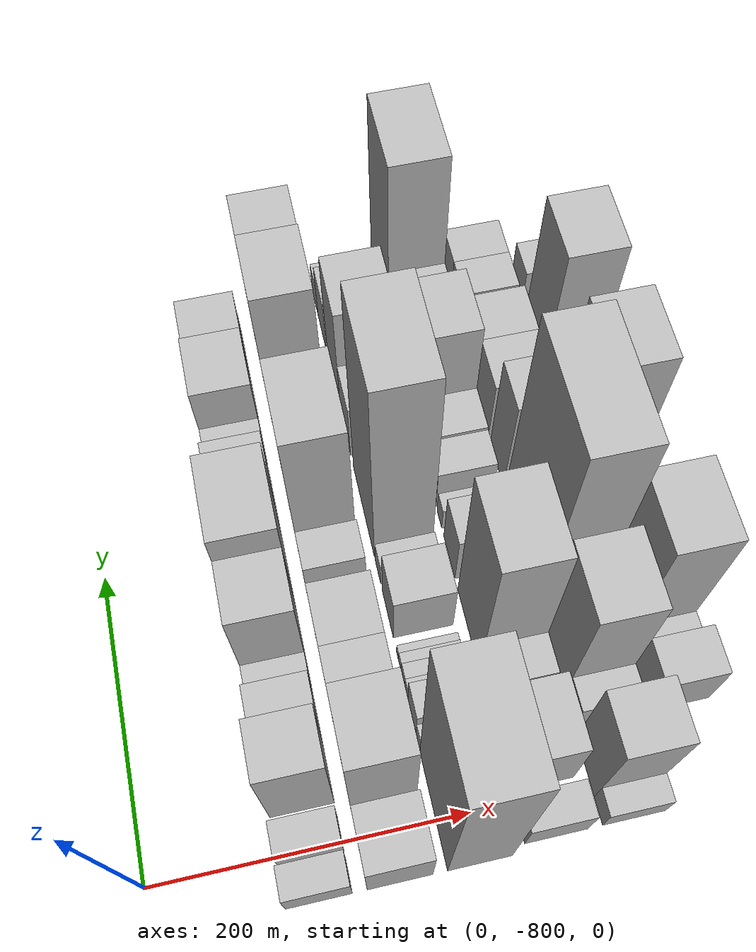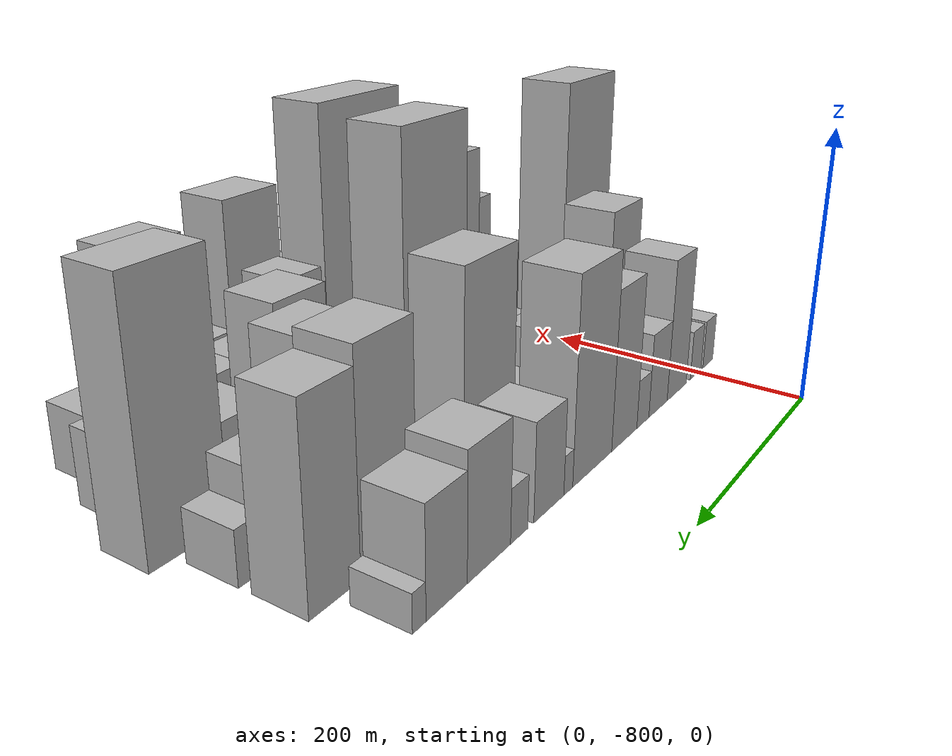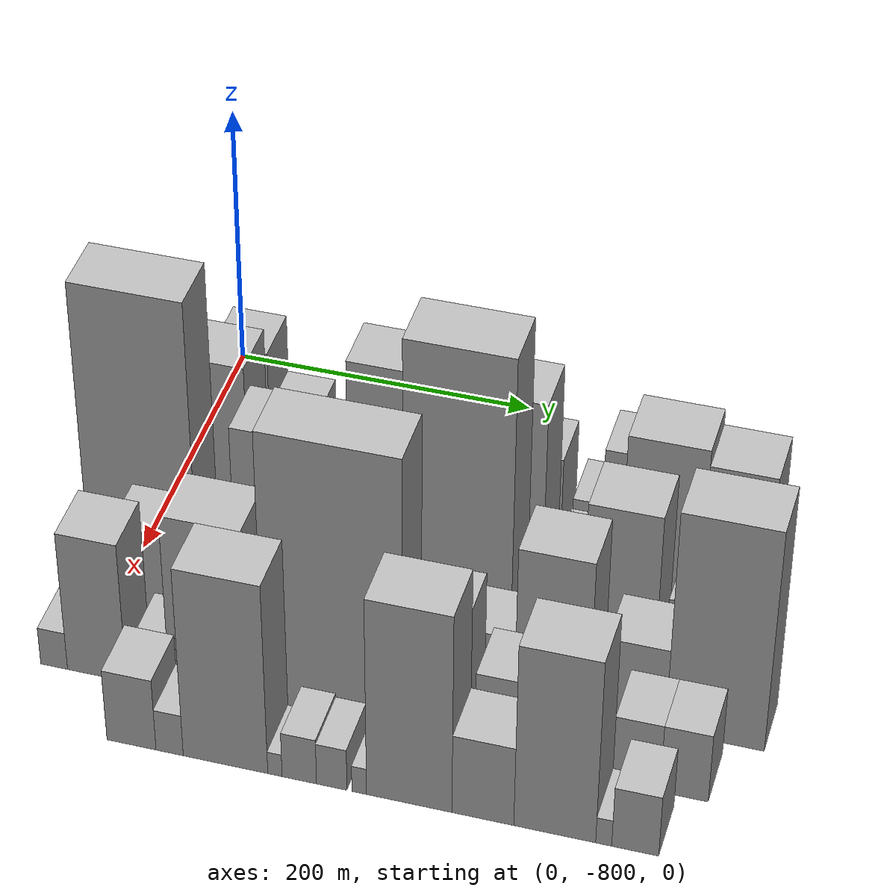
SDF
<sdf version="1.6">
 <world name="default">
  <model name="building_1">
   <static>1</static>
   <pose>100.0000 -819.7989 0 0.000000 0.000000 0.000000</pose>
   <link name="link">
    <pose>0 0 19.50 0 0 0</pose>
    <collision name="collision"><geometry><box><size>40.0000 20.4023 39.0000</size></box></geometry></collision>
    <visual name="visual">
     <cast_shadows>0</cast_shadows>
     <geometry><box><size>40.0000 20.4023 39.0000</size></box></geometry>
     <material>
      <script>
       <uri>model://HANNAS_wall/materials/scripts</uri>
       <uri>model://HANNAS_wall/materials/textures</uri>
       <name>vrc/HANNAS_wall</name>
      </script>
     </material>
    </visual>
   </link>
  </model>
  <model name="building_2">
   <static>1</static>
   <pose>100.0000 -795.0000 0 0.000000 0.000000 0.000000</pose>
   <link name="link">
    <pose>0 0 19.50 0 0 0</pose>
    <collision name="collision"><geometry><box><size>40.0000 21.1955 39.0000</size></box></geometry></collision>
    <visual name="visual">
     <cast_shadows>0</cast_shadows>
     <geometry><box><size>40.0000 21.1955 39.0000</size></box></geometry>
     <material>
      <script>
       <uri>model://HANNAS_wall/materials/scripts</uri>
       <uri>model://HANNAS_wall/materials/textures</uri>
       <name>vrc/HANNAS_wall</name>
      </script>
     </material>
    </visual>
   </link>
  </model>
  <model name="building_3">
   <static>1</static>
   <pose>100.0000 -758.7501 0 0.000000 0.000000 0.000000</pose>
   <link name="link">
    <pose>0 0 54.00 0 0 0</pose>
    <collision name="collision"><geometry><box><size>40.0000 35.3042 108.0000</size></box></geometry></collision>
    <visual name="visual">
     <cast_shadows>0</cast_shadows>
     <geometry><box><size>40.0000 35.3042 108.0000</size></box></geometry>
     <material>
      <script>
       <uri>model://HANNAS_wall/materials/scripts</uri>
       <uri>model://HANNAS_wall/materials/textures</uri>
       <name>vrc/HANNAS_wall</name>
      </script>
     </material>
    </visual>
   </link>
  </model>
  <model name="building_4">
   <static>1</static>
   <pose>100.0000 -725.2019 0 0.000000 0.000000 0.000000</pose>
   <link name="link">
    <pose>0 0 31.50 0 0 0</pose>
    <collision name="collision"><geometry><box><size>40.0000 31.7923 63.0000</size></box></geometry></collision>
    <visual name="visual">
     <cast_shadows>0</cast_shadows>
     <geometry><box><size>40.0000 31.7923 63.0000</size></box></geometry>
     <material>
      <script>
       <uri>model://HANNAS_wall/materials/scripts</uri>
       <uri>model://HANNAS_wall/materials/textures</uri>
       <name>vrc/HANNAS_wall</name>
      </script>
     </material>
    </visual>
   </link>
  </model>
  <model name="building_5">
   <static>1</static>
   <pose>100.0000 -699.4300 0 0.000000 0.000000 0.000000</pose>
   <link name="link">
    <pose>0 0 18.00 0 0 0</pose>
    <collision name="collision"><geometry><box><size>40.0000 19.7514 36.0000</size></box></geometry></collision>
    <visual name="visual">
     <cast_shadows>0</cast_shadows>
     <geometry><box><size>40.0000 19.7514 36.0000</size></box></geometry>
     <material>
      <script>
       <uri>model://HANNAS_wall/materials/scripts</uri>
       <uri>model://HANNAS_wall/materials/textures</uri>
       <name>vrc/HANNAS_wall</name>
      </script>
     </material>
    </visual>
   </link>
  </model>
  <model name="building_6">
   <static>1</static>
   <pose>100.0000 -670.1482 0 0.000000 0.000000 0.000000</pose>
   <link name="link">
    <pose>0 0 57.00 0 0 0</pose>
    <collision name="collision"><geometry><box><size>40.0000 38.8122 114.0000</size></box></geometry></collision>
    <visual name="visual">
     <cast_shadows>0</cast_shadows>
     <geometry><box><size>40.0000 38.8122 114.0000</size></box></geometry>
     <material>
      <script>
       <uri>model://HANNAS_wall/materials/scripts</uri>
       <uri>model://HANNAS_wall/materials/textures</uri>
       <name>vrc/HANNAS_wall</name>
      </script>
     </material>
    </visual>
   </link>
  </model>
  <model name="building_7">
   <static>1</static>
   <pose>100.0000 -623.6436 0 0.000000 0.000000 0.000000</pose>
   <link name="link">
    <pose>0 0 70.50 0 0 0</pose>
    <collision name="collision"><geometry><box><size>40.0000 54.1970 141.0000</size></box></geometry></collision>
    <visual name="visual">
     <cast_shadows>0</cast_shadows>
     <geometry><box><size>40.0000 54.1970 141.0000</size></box></geometry>
     <material>
      <script>
       <uri>model://HANNAS_wall/materials/scripts</uri>
       <uri>model://HANNAS_wall/materials/textures</uri>
       <name>vrc/HANNAS_wall</name>
      </script>
     </material>
    </visual>
   </link>
  </model>
  <model name="building_8">
   <static>1</static>
   <pose>100.0000 -590.8493 0 0.000000 0.000000 0.000000</pose>
   <link name="link">
    <pose>0 0 13.50 0 0 0</pose>
    <collision name="collision"><geometry><box><size>40.0000 11.3917 27.0000</size></box></geometry></collision>
    <visual name="visual">
     <cast_shadows>0</cast_shadows>
     <geometry><box><size>40.0000 11.3917 27.0000</size></box></geometry>
     <material>
      <script>
       <uri>model://HANNAS_wall/materials/scripts</uri>
       <uri>model://HANNAS_wall/materials/textures</uri>
       <name>vrc/HANNAS_wall</name>
      </script>
     </material>
    </visual>
   </link>
  </model>
  <model name="building_9">
   <static>1</static>
   <pose>100.0000 -566.9279 0 0.000000 0.000000 0.000000</pose>
   <link name="link">
    <pose>0 0 33.00 0 0 0</pose>
    <collision name="collision"><geometry><box><size>40.0000 36.4511 66.0000</size></box></geometry></collision>
    <visual name="visual">
     <cast_shadows>0</cast_shadows>
     <geometry><box><size>40.0000 36.4511 66.0000</size></box></geometry>
     <material>
      <script>
       <uri>model://HANNAS_wall/materials/scripts</uri>
       <uri>model://HANNAS_wall/materials/textures</uri>
       <name>vrc/HANNAS_wall</name>
      </script>
     </material>
    </visual>
   </link>
  </model>
  <model name="building_10">
   <static>1</static>
   <pose>100.0000 -532.1652 0 0.000000 0.000000 0.000000</pose>
   <link name="link">
    <pose>0 0 18.00 0 0 0</pose>
    <collision name="collision"><geometry><box><size>40.0000 19.0742 36.0000</size></box></geometry></collision>
    <visual name="visual">
     <cast_shadows>0</cast_shadows>
     <geometry><box><size>40.0000 19.0742 36.0000</size></box></geometry>
     <material>
      <script>
       <uri>model://HANNAS_wall/materials/scripts</uri>
       <uri>model://HANNAS_wall/materials/textures</uri>
       <name>vrc/HANNAS_wall</name>
      </script>
     </material>
    </visual>
   </link>
  </model>
  <model name="building_11">
   <static>1</static>
   <pose>100.0000 -500.5744 0 0.000000 0.000000 0.000000</pose>
   <link name="link">
    <pose>0 0 40.50 0 0 0</pose>
    <collision name="collision"><geometry><box><size>40.0000 44.1075 81.0000</size></box></geometry></collision>
    <visual name="visual">
     <cast_shadows>0</cast_shadows>
     <geometry><box><size>40.0000 44.1075 81.0000</size></box></geometry>
     <material>
      <script>
       <uri>model://HANNAS_wall/materials/scripts</uri>
       <uri>model://HANNAS_wall/materials/textures</uri>
       <name>vrc/HANNAS_wall</name>
      </script>
     </material>
    </visual>
   </link>
  </model>
  <model name="building_12">
   <static>1</static>
   <pose>100.0000 -459.6822 0 0.000000 0.000000 0.000000</pose>
   <link name="link">
    <pose>0 0 34.50 0 0 0</pose>
    <collision name="collision"><geometry><box><size>40.0000 37.6769 69.0000</size></box></geometry></collision>
    <visual name="visual">
     <cast_shadows>0</cast_shadows>
     <geometry><box><size>40.0000 37.6769 69.0000</size></box></geometry>
     <material>
      <script>
       <uri>model://HANNAS_wall/materials/scripts</uri>
       <uri>model://HANNAS_wall/materials/textures</uri>
       <name>vrc/HANNAS_wall</name>
      </script>
     </material>
    </visual>
   </link>
  </model>
  <model name="building_13">
   <static>1</static>
   <pose>100.0000 -435.0364 0 0.000000 0.000000 0.000000</pose>
   <link name="link">
    <pose>0 0 12.00 0 0 0</pose>
    <collision name="collision"><geometry><box><size>40.0000 11.6146 24.0000</size></box></geometry></collision>
    <visual name="visual">
     <cast_shadows>0</cast_shadows>
     <geometry><box><size>40.0000 11.6146 24.0000</size></box></geometry>
     <material>
      <script>
       <uri>model://HANNAS_wall/materials/scripts</uri>
       <uri>model://HANNAS_wall/materials/textures</uri>
       <name>vrc/HANNAS_wall</name>
      </script>
     </material>
    </visual>
   </link>
  </model>
  <model name="building_46">
   <static>1</static>
   <pose>149.0000 -810.5329 0 0.000000 0.000000 0.000000</pose>
   <link name="link">
    <pose>0 0 33.00 0 0 0</pose>
    <collision name="collision"><geometry><box><size>40.0000 38.9342 66.0000</size></box></geometry></collision>
    <visual name="visual">
     <cast_shadows>0</cast_shadows>
     <geometry><box><size>40.0000 38.9342 66.0000</size></box></geometry>
     <material>
      <script>
       <uri>model://HANNAS_wall/materials/scripts</uri>
       <uri>model://HANNAS_wall/materials/textures</uri>
       <name>vrc/HANNAS_wall</name>
      </script>
     </material>
    </visual>
   </link>
  </model>
  <model name="building_47">
   <static>1</static>
   <pose>149.0000 -762.7635 0 0.000000 0.000000 0.000000</pose>
   <link name="link">
    <pose>0 0 67.50 0 0 0</pose>
    <collision name="collision"><geometry><box><size>40.0000 46.6046 135.0000</size></box></geometry></collision>
    <visual name="visual">
     <cast_shadows>0</cast_shadows>
     <geometry><box><size>40.0000 46.6046 135.0000</size></box></geometry>
     <material>
      <script>
       <uri>model://HANNAS_wall/materials/scripts</uri>
       <uri>model://HANNAS_wall/materials/textures</uri>
       <name>vrc/HANNAS_wall</name>
      </script>
     </material>
    </visual>
   </link>
  </model>
  <model name="building_48">
   <static>1</static>
   <pose>149.0000 -718.9374 0 0.000000 0.000000 0.000000</pose>
   <link name="link">
    <pose>0 0 34.50 0 0 0</pose>
    <collision name="collision"><geometry><box><size>40.0000 41.0476 69.0000</size></box></geometry></collision>
    <visual name="visual">
     <cast_shadows>0</cast_shadows>
     <geometry><box><size>40.0000 41.0476 69.0000</size></box></geometry>
     <material>
      <script>
       <uri>model://HANNAS_wall/materials/scripts</uri>
       <uri>model://HANNAS_wall/materials/textures</uri>
       <name>vrc/HANNAS_wall</name>
      </script>
     </material>
    </visual>
   </link>
  </model>
  <model name="building_49">
   <static>1</static>
   <pose>149.0000 -678.3683 0 0.000000 0.000000 0.000000</pose>
   <link name="link">
    <pose>0 0 34.50 0 0 0</pose>
    <collision name="collision"><geometry><box><size>40.0000 40.0906 69.0000</size></box></geometry></collision>
    <visual name="visual">
     <cast_shadows>0</cast_shadows>
     <geometry><box><size>40.0000 40.0906 69.0000</size></box></geometry>
     <material>
      <script>
       <uri>model://HANNAS_wall/materials/scripts</uri>
       <uri>model://HANNAS_wall/materials/textures</uri>
       <name>vrc/HANNAS_wall</name>
      </script>
     </material>
    </visual>
   </link>
  </model>
  <model name="building_50">
   <static>1</static>
   <pose>149.0000 -647.5797 0 0.000000 0.000000 0.000000</pose>
   <link name="link">
    <pose>0 0 12.00 0 0 0</pose>
    <collision name="collision"><geometry><box><size>40.0000 11.4866 24.0000</size></box></geometry></collision>
    <visual name="visual">
     <cast_shadows>0</cast_shadows>
     <geometry><box><size>40.0000 11.4866 24.0000</size></box></geometry>
     <material>
      <script>
       <uri>model://HANNAS_wall/materials/scripts</uri>
       <uri>model://HANNAS_wall/materials/textures</uri>
       <name>vrc/HANNAS_wall</name>
      </script>
     </material>
    </visual>
   </link>
  </model>
  <model name="building_51">
   <static>1</static>
   <pose>149.0000 -628.5287 0 0.000000 0.000000 0.000000</pose>
   <link name="link">
    <pose>0 0 24.00 0 0 0</pose>
    <collision name="collision"><geometry><box><size>40.0000 26.6155 48.0000</size></box></geometry></collision>
    <visual name="visual">
     <cast_shadows>0</cast_shadows>
     <geometry><box><size>40.0000 26.6155 48.0000</size></box></geometry>
     <material>
      <script>
       <uri>model://HANNAS_wall/materials/scripts</uri>
       <uri>model://HANNAS_wall/materials/textures</uri>
       <name>vrc/HANNAS_wall</name>
      </script>
     </material>
    </visual>
   </link>
  </model>
  <model name="building_52">
   <static>1</static>
   <pose>149.0000 -577.2613 0 0.000000 0.000000 0.000000</pose>
   <link name="link">
    <pose>0 0 75.00 0 0 0</pose>
    <collision name="collision"><geometry><box><size>40.0000 57.9193 150.0000</size></box></geometry></collision>
    <visual name="visual">
     <cast_shadows>0</cast_shadows>
     <geometry><box><size>40.0000 57.9193 150.0000</size></box></geometry>
     <material>
      <script>
       <uri>model://HANNAS_wall/materials/scripts</uri>
       <uri>model://HANNAS_wall/materials/textures</uri>
       <name>vrc/HANNAS_wall</name>
      </script>
     </material>
    </visual>
   </link>
  </model>
  <model name="building_53">
   <static>1</static>
   <pose>149.0000 -529.0695 0 0.000000 0.000000 0.000000</pose>
   <link name="link">
    <pose>0 0 18.00 0 0 0</pose>
    <collision name="collision"><geometry><box><size>40.0000 20.4644 36.0000</size></box></geometry></collision>
    <visual name="visual">
     <cast_shadows>0</cast_shadows>
     <geometry><box><size>40.0000 20.4644 36.0000</size></box></geometry>
     <material>
      <script>
       <uri>model://HANNAS_wall/materials/scripts</uri>
       <uri>model://HANNAS_wall/materials/textures</uri>
       <name>vrc/HANNAS_wall</name>
      </script>
     </material>
    </visual>
   </link>
  </model>
  <model name="building_54">
   <static>1</static>
   <pose>149.0000 -509.0496 0 0.000000 0.000000 0.000000</pose>
   <link name="link">
    <pose>0 0 19.50 0 0 0</pose>
    <collision name="collision"><geometry><box><size>40.0000 19.5755 39.0000</size></box></geometry></collision>
    <visual name="visual">
     <cast_shadows>0</cast_shadows>
     <geometry><box><size>40.0000 19.5755 39.0000</size></box></geometry>
     <material>
      <script>
       <uri>model://HANNAS_wall/materials/scripts</uri>
       <uri>model://HANNAS_wall/materials/textures</uri>
       <name>vrc/HANNAS_wall</name>
      </script>
     </material>
    </visual>
   </link>
  </model>
  <model name="building_55">
   <static>1</static>
   <pose>149.0000 -474.1920 0 0.000000 0.000000 0.000000</pose>
   <link name="link">
    <pose>0 0 69.00 0 0 0</pose>
    <collision name="collision"><geometry><box><size>40.0000 50.1397 138.0000</size></box></geometry></collision>
    <visual name="visual">
     <cast_shadows>0</cast_shadows>
     <geometry><box><size>40.0000 50.1397 138.0000</size></box></geometry>
     <material>
      <script>
       <uri>model://HANNAS_wall/materials/scripts</uri>
       <uri>model://HANNAS_wall/materials/textures</uri>
       <name>vrc/HANNAS_wall</name>
      </script>
     </material>
    </visual>
   </link>
  </model>
  <model name="building_56">
   <static>1</static>
   <pose>149.0000 -428.2778 0 0.000000 0.000000 0.000000</pose>
   <link name="link">
    <pose>0 0 63.00 0 0 0</pose>
    <collision name="collision"><geometry><box><size>40.0000 41.6887 126.0000</size></box></geometry></collision>
    <visual name="visual">
     <cast_shadows>0</cast_shadows>
     <geometry><box><size>40.0000 41.6887 126.0000</size></box></geometry>
     <material>
      <script>
       <uri>model://HANNAS_wall/materials/scripts</uri>
       <uri>model://HANNAS_wall/materials/textures</uri>
       <name>vrc/HANNAS_wall</name>
      </script>
     </material>
    </visual>
   </link>
  </model>
  <model name="building_96">
   <static>1</static>
   <pose>198.0000 -793.8366 0 0.000000 0.000000 0.000000</pose>
   <link name="link">
    <pose>0 0 109.50 0 0 0</pose>
    <collision name="collision"><geometry><box><size>40.0000 72.3268 219.0000</size></box></geometry></collision>
    <visual name="visual">
     <cast_shadows>0</cast_shadows>
     <geometry><box><size>40.0000 72.3268 219.0000</size></box></geometry>
     <material>
      <script>
       <uri>model://HANNAS_wall/materials/scripts</uri>
       <uri>model://HANNAS_wall/materials/textures</uri>
       <name>vrc/HANNAS_wall</name>
      </script>
     </material>
    </visual>
   </link>
  </model>
  <model name="building_97">
   <static>1</static>
   <pose>198.0000 -752.1993 0 0.000000 0.000000 0.000000</pose>
   <link name="link">
    <pose>0 0 13.50 0 0 0</pose>
    <collision name="collision"><geometry><box><size>40.0000 10.9479 27.0000</size></box></geometry></collision>
    <visual name="visual">
     <cast_shadows>0</cast_shadows>
     <geometry><box><size>40.0000 10.9479 27.0000</size></box></geometry>
     <material>
      <script>
       <uri>model://HANNAS_wall/materials/scripts</uri>
       <uri>model://HANNAS_wall/materials/textures</uri>
       <name>vrc/HANNAS_wall</name>
      </script>
     </material>
    </visual>
   </link>
  </model>
  <model name="building_98">
   <static>1</static>
   <pose>198.0000 -735.5533 0 0.000000 0.000000 0.000000</pose>
   <link name="link">
    <pose>0 0 21.00 0 0 0</pose>
    <collision name="collision"><geometry><box><size>40.0000 22.3441 42.0000</size></box></geometry></collision>
    <visual name="visual">
     <cast_shadows>0</cast_shadows>
     <geometry><box><size>40.0000 22.3441 42.0000</size></box></geometry>
     <material>
      <script>
       <uri>model://HANNAS_wall/materials/scripts</uri>
       <uri>model://HANNAS_wall/materials/textures</uri>
       <name>vrc/HANNAS_wall</name>
      </script>
     </material>
    </visual>
   </link>
  </model>
  <model name="building_99">
   <static>1</static>
   <pose>198.0000 -720.1566 0 0.000000 0.000000 0.000000</pose>
   <link name="link">
    <pose>0 0 10.50 0 0 0</pose>
    <collision name="collision"><geometry><box><size>40.0000 8.4493 21.0000</size></box></geometry></collision>
    <visual name="visual">
     <cast_shadows>0</cast_shadows>
     <geometry><box><size>40.0000 8.4493 21.0000</size></box></geometry>
     <material>
      <script>
       <uri>model://HANNAS_wall/materials/scripts</uri>
       <uri>model://HANNAS_wall/materials/textures</uri>
       <name>vrc/HANNAS_wall</name>
      </script>
     </material>
    </visual>
   </link>
  </model>
  <model name="building_100">
   <static>1</static>
   <pose>198.0000 -710.8750 0 0.000000 0.000000 0.000000</pose>
   <link name="link">
    <pose>0 0 10.50 0 0 0</pose>
    <collision name="collision"><geometry><box><size>40.0000 10.1138 21.0000</size></box></geometry></collision>
    <visual name="visual">
     <cast_shadows>0</cast_shadows>
     <geometry><box><size>40.0000 10.1138 21.0000</size></box></geometry>
     <material>
      <script>
       <uri>model://HANNAS_wall/materials/scripts</uri>
       <uri>model://HANNAS_wall/materials/textures</uri>
       <name>vrc/HANNAS_wall</name>
      </script>
     </material>
    </visual>
   </link>
  </model>
  <model name="building_101">
   <static>1</static>
   <pose>198.0000 -701.8716 0 0.000000 0.000000 0.000000</pose>
   <link name="link">
    <pose>0 0 9.00 0 0 0</pose>
    <collision name="collision"><geometry><box><size>40.0000 7.8930 18.0000</size></box></geometry></collision>
    <visual name="visual">
     <cast_shadows>0</cast_shadows>
     <geometry><box><size>40.0000 7.8930 18.0000</size></box></geometry>
     <material>
      <script>
       <uri>model://HANNAS_wall/materials/scripts</uri>
       <uri>model://HANNAS_wall/materials/textures</uri>
       <name>vrc/HANNAS_wall</name>
      </script>
     </material>
    </visual>
   </link>
  </model>
  <model name="building_102">
   <static>1</static>
   <pose>198.0000 -694.9132 0 0.000000 0.000000 0.000000</pose>
   <link name="link">
    <pose>0 0 7.50 0 0 0</pose>
    <collision name="collision"><geometry><box><size>40.0000 6.0238 15.0000</size></box></geometry></collision>
    <visual name="visual">
     <cast_shadows>0</cast_shadows>
     <geometry><box><size>40.0000 6.0238 15.0000</size></box></geometry>
     <material>
      <script>
       <uri>model://HANNAS_wall/materials/scripts</uri>
       <uri>model://HANNAS_wall/materials/textures</uri>
       <name>vrc/HANNAS_wall</name>
      </script>
     </material>
    </visual>
   </link>
  </model>
  <model name="building_103">
   <static>1</static>
   <pose>198.0000 -665.4075 0 0.000000 0.000000 0.000000</pose>
   <link name="link">
    <pose>0 0 31.50 0 0 0</pose>
    <collision name="collision"><geometry><box><size>40.0000 32.9875 63.0000</size></box></geometry></collision>
    <visual name="visual">
     <cast_shadows>0</cast_shadows>
     <geometry><box><size>40.0000 32.9875 63.0000</size></box></geometry>
     <material>
      <script>
       <uri>model://HANNAS_wall/materials/scripts</uri>
       <uri>model://HANNAS_wall/materials/textures</uri>
       <name>vrc/HANNAS_wall</name>
      </script>
     </material>
    </visual>
   </link>
  </model>
  <model name="building_104">
   <static>1</static>
   <pose>198.0000 -635.6119 0 0.000000 0.000000 0.000000</pose>
   <link name="link">
    <pose>0 0 15.00 0 0 0</pose>
    <collision name="collision"><geometry><box><size>40.0000 16.6038 30.0000</size></box></geometry></collision>
    <visual name="visual">
     <cast_shadows>0</cast_shadows>
     <geometry><box><size>40.0000 16.6038 30.0000</size></box></geometry>
     <material>
      <script>
       <uri>model://HANNAS_wall/materials/scripts</uri>
       <uri>model://HANNAS_wall/materials/textures</uri>
       <name>vrc/HANNAS_wall</name>
      </script>
     </material>
    </visual>
   </link>
  </model>
  <model name="building_105">
   <static>1</static>
   <pose>198.0000 -590.0746 0 0.000000 0.000000 0.000000</pose>
   <link name="link">
    <pose>0 0 111.00 0 0 0</pose>
    <collision name="collision"><geometry><box><size>40.0000 68.4707 222.0000</size></box></geometry></collision>
    <visual name="visual">
     <cast_shadows>0</cast_shadows>
     <geometry><box><size>40.0000 68.4707 222.0000</size></box></geometry>
     <material>
      <script>
       <uri>model://HANNAS_wall/materials/scripts</uri>
       <uri>model://HANNAS_wall/materials/textures</uri>
       <name>vrc/HANNAS_wall</name>
      </script>
     </material>
    </visual>
   </link>
  </model>
  <model name="building_106">
   <static>1</static>
   <pose>198.0000 -528.5162 0 0.000000 0.000000 0.000000</pose>
   <link name="link">
    <pose>0 0 31.50 0 0 0</pose>
    <collision name="collision"><geometry><box><size>40.0000 34.6461 63.0000</size></box></geometry></collision>
    <visual name="visual">
     <cast_shadows>0</cast_shadows>
     <geometry><box><size>40.0000 34.6461 63.0000</size></box></geometry>
     <material>
      <script>
       <uri>model://HANNAS_wall/materials/scripts</uri>
       <uri>model://HANNAS_wall/materials/textures</uri>
       <name>vrc/HANNAS_wall</name>
      </script>
     </material>
    </visual>
   </link>
  </model>
  <model name="building_107">
   <static>1</static>
   <pose>198.0000 -488.4299 0 0.000000 0.000000 0.000000</pose>
   <link name="link">
    <pose>0 0 61.50 0 0 0</pose>
    <collision name="collision"><geometry><box><size>40.0000 45.5265 123.0000</size></box></geometry></collision>
    <visual name="visual">
     <cast_shadows>0</cast_shadows>
     <geometry><box><size>40.0000 45.5265 123.0000</size></box></geometry>
     <material>
      <script>
       <uri>model://HANNAS_wall/materials/scripts</uri>
       <uri>model://HANNAS_wall/materials/textures</uri>
       <name>vrc/HANNAS_wall</name>
      </script>
     </material>
    </visual>
   </link>
  </model>
  <model name="building_108">
   <static>1</static>
   <pose>198.0000 -443.6005 0 0.000000 0.000000 0.000000</pose>
   <link name="link">
    <pose>0 0 30.00 0 0 0</pose>
    <collision name="collision"><geometry><box><size>40.0000 32.1324 60.0000</size></box></geometry></collision>
    <visual name="visual">
     <cast_shadows>0</cast_shadows>
     <geometry><box><size>40.0000 32.1324 60.0000</size></box></geometry>
     <material>
      <script>
       <uri>model://HANNAS_wall/materials/scripts</uri>
       <uri>model://HANNAS_wall/materials/textures</uri>
       <name>vrc/HANNAS_wall</name>
      </script>
     </material>
    </visual>
   </link>
  </model>
  <model name="building_109">
   <static>1</static>
   <pose>198.0000 -417.1882 0 0.000000 0.000000 0.000000</pose>
   <link name="link">
    <pose>0 0 18.00 0 0 0</pose>
    <collision name="collision"><geometry><box><size>40.0000 20.6921 36.0000</size></box></geometry></collision>
    <visual name="visual">
     <cast_shadows>0</cast_shadows>
     <geometry><box><size>40.0000 20.6921 36.0000</size></box></geometry>
     <material>
      <script>
       <uri>model://HANNAS_wall/materials/scripts</uri>
       <uri>model://HANNAS_wall/materials/textures</uri>
       <name>vrc/HANNAS_wall</name>
      </script>
     </material>
    </visual>
   </link>
  </model>
  <model name="building_146">
   <static>1</static>
   <pose>247.0000 -813.7182 0 0.000000 0.000000 0.000000</pose>
   <link name="link">
    <pose>0 0 21.00 0 0 0</pose>
    <collision name="collision"><geometry><box><size>40.0000 22.5636 42.0000</size></box></geometry></collision>
    <visual name="visual">
     <cast_shadows>0</cast_shadows>
     <geometry><box><size>40.0000 22.5636 42.0000</size></box></geometry>
     <material>
      <script>
       <uri>model://HANNAS_wall/materials/scripts</uri>
       <uri>model://HANNAS_wall/materials/textures</uri>
       <name>vrc/HANNAS_wall</name>
      </script>
     </material>
    </visual>
   </link>
  </model>
  <model name="building_147">
   <static>1</static>
   <pose>247.0000 -770.3421 0 0.000000 0.000000 0.000000</pose>
   <link name="link">
    <pose>0 0 39.00 0 0 0</pose>
    <collision name="collision"><geometry><box><size>40.0000 46.1886 78.0000</size></box></geometry></collision>
    <visual name="visual">
     <cast_shadows>0</cast_shadows>
     <geometry><box><size>40.0000 46.1886 78.0000</size></box></geometry>
     <material>
      <script>
       <uri>model://HANNAS_wall/materials/scripts</uri>
       <uri>model://HANNAS_wall/materials/textures</uri>
       <name>vrc/HANNAS_wall</name>
      </script>
     </material>
    </visual>
   </link>
  </model>
  <model name="building_148">
   <static>1</static>
   <pose>247.0000 -727.4171 0 0.000000 0.000000 0.000000</pose>
   <link name="link">
    <pose>0 0 25.50 0 0 0</pose>
    <collision name="collision"><geometry><box><size>40.0000 25.6615 51.0000</size></box></geometry></collision>
    <visual name="visual">
     <cast_shadows>0</cast_shadows>
     <geometry><box><size>40.0000 25.6615 51.0000</size></box></geometry>
     <material>
      <script>
       <uri>model://HANNAS_wall/materials/scripts</uri>
       <uri>model://HANNAS_wall/materials/textures</uri>
       <name>vrc/HANNAS_wall</name>
      </script>
     </material>
    </visual>
   </link>
  </model>
  <model name="building_149">
   <static>1</static>
   <pose>247.0000 -686.7477 0 0.000000 0.000000 0.000000</pose>
   <link name="link">
    <pose>0 0 87.00 0 0 0</pose>
    <collision name="collision"><geometry><box><size>40.0000 55.6773 174.0000</size></box></geometry></collision>
    <visual name="visual">
     <cast_shadows>0</cast_shadows>
     <geometry><box><size>40.0000 55.6773 174.0000</size></box></geometry>
     <material>
      <script>
       <uri>model://HANNAS_wall/materials/scripts</uri>
       <uri>model://HANNAS_wall/materials/textures</uri>
       <name>vrc/HANNAS_wall</name>
      </script>
     </material>
    </visual>
   </link>
  </model>
  <model name="building_150">
   <static>1</static>
   <pose>247.0000 -635.2617 0 0.000000 0.000000 0.000000</pose>
   <link name="link">
    <pose>0 0 30.00 0 0 0</pose>
    <collision name="collision"><geometry><box><size>40.0000 31.2946 60.0000</size></box></geometry></collision>
    <visual name="visual">
     <cast_shadows>0</cast_shadows>
     <geometry><box><size>40.0000 31.2946 60.0000</size></box></geometry>
     <material>
      <script>
       <uri>model://HANNAS_wall/materials/scripts</uri>
       <uri>model://HANNAS_wall/materials/textures</uri>
       <name>vrc/HANNAS_wall</name>
      </script>
     </material>
    </visual>
   </link>
  </model>
  <model name="building_151">
   <static>1</static>
   <pose>247.0000 -606.8743 0 0.000000 0.000000 0.000000</pose>
   <link name="link">
    <pose>0 0 13.50 0 0 0</pose>
    <collision name="collision"><geometry><box><size>40.0000 13.4801 27.0000</size></box></geometry></collision>
    <visual name="visual">
     <cast_shadows>0</cast_shadows>
     <geometry><box><size>40.0000 13.4801 27.0000</size></box></geometry>
     <material>
      <script>
       <uri>model://HANNAS_wall/materials/scripts</uri>
       <uri>model://HANNAS_wall/materials/textures</uri>
       <name>vrc/HANNAS_wall</name>
      </script>
     </material>
    </visual>
   </link>
  </model>
  <model name="building_152">
   <static>1</static>
   <pose>247.0000 -584.1722 0 0.000000 0.000000 0.000000</pose>
   <link name="link">
    <pose>0 0 24.00 0 0 0</pose>
    <collision name="collision"><geometry><box><size>40.0000 25.9241 48.0000</size></box></geometry></collision>
    <visual name="visual">
     <cast_shadows>0</cast_shadows>
     <geometry><box><size>40.0000 25.9241 48.0000</size></box></geometry>
     <material>
      <script>
       <uri>model://HANNAS_wall/materials/scripts</uri>
       <uri>model://HANNAS_wall/materials/textures</uri>
       <name>vrc/HANNAS_wall</name>
      </script>
     </material>
    </visual>
   </link>
  </model>
  <model name="building_153">
   <static>1</static>
   <pose>247.0000 -555.9337 0 0.000000 0.000000 0.000000</pose>
   <link name="link">
    <pose>0 0 25.50 0 0 0</pose>
    <collision name="collision"><geometry><box><size>40.0000 30.5530 51.0000</size></box></geometry></collision>
    <visual name="visual">
     <cast_shadows>0</cast_shadows>
     <geometry><box><size>40.0000 30.5530 51.0000</size></box></geometry>
     <material>
      <script>
       <uri>model://HANNAS_wall/materials/scripts</uri>
       <uri>model://HANNAS_wall/materials/textures</uri>
       <name>vrc/HANNAS_wall</name>
      </script>
     </material>
    </visual>
   </link>
  </model>
  <model name="building_154">
   <static>1</static>
   <pose>247.0000 -517.6251 0 0.000000 0.000000 0.000000</pose>
   <link name="link">
    <pose>0 0 61.50 0 0 0</pose>
    <collision name="collision"><geometry><box><size>40.0000 46.0641 123.0000</size></box></geometry></collision>
    <visual name="visual">
     <cast_shadows>0</cast_shadows>
     <geometry><box><size>40.0000 46.0641 123.0000</size></box></geometry>
     <material>
      <script>
       <uri>model://HANNAS_wall/materials/scripts</uri>
       <uri>model://HANNAS_wall/materials/textures</uri>
       <name>vrc/HANNAS_wall</name>
      </script>
     </material>
    </visual>
   </link>
  </model>
  <model name="building_155">
   <static>1</static>
   <pose>247.0000 -466.8044 0 0.000000 0.000000 0.000000</pose>
   <link name="link">
    <pose>0 0 33.00 0 0 0</pose>
    <collision name="collision"><geometry><box><size>40.0000 37.5773 66.0000</size></box></geometry></collision>
    <visual name="visual">
     <cast_shadows>0</cast_shadows>
     <geometry><box><size>40.0000 37.5773 66.0000</size></box></geometry>
     <material>
      <script>
       <uri>model://HANNAS_wall/materials/scripts</uri>
       <uri>model://HANNAS_wall/materials/textures</uri>
       <name>vrc/HANNAS_wall</name>
      </script>
     </material>
    </visual>
   </link>
  </model>
  <model name="building_156">
   <static>1</static>
   <pose>247.0000 -418.1720 0 0.000000 0.000000 0.000000</pose>
   <link name="link">
    <pose>0 0 87.00 0 0 0</pose>
    <collision name="collision"><geometry><box><size>40.0000 59.6874 174.0000</size></box></geometry></collision>
    <visual name="visual">
     <cast_shadows>0</cast_shadows>
     <geometry><box><size>40.0000 59.6874 174.0000</size></box></geometry>
     <material>
      <script>
       <uri>model://HANNAS_wall/materials/scripts</uri>
       <uri>model://HANNAS_wall/materials/textures</uri>
       <name>vrc/HANNAS_wall</name>
      </script>
     </material>
    </visual>
   </link>
  </model>
  <model name="building_188">
   <static>1</static>
   <pose>296.0000 -816.3679 0 0.000000 0.000000 0.000000</pose>
   <link name="link">
    <pose>0 0 15.00 0 0 0</pose>
    <collision name="collision"><geometry><box><size>40.0000 17.2643 30.0000</size></box></geometry></collision>
    <visual name="visual">
     <cast_shadows>0</cast_shadows>
     <geometry><box><size>40.0000 17.2643 30.0000</size></box></geometry>
     <material>
      <script>
       <uri>model://HANNAS_wall/materials/scripts</uri>
       <uri>model://HANNAS_wall/materials/textures</uri>
       <name>vrc/HANNAS_wall</name>
      </script>
     </material>
    </visual>
   </link>
  </model>
  <model name="building_189">
   <static>1</static>
   <pose>296.0000 -788.7454 0 0.000000 0.000000 0.000000</pose>
   <link name="link">
    <pose>0 0 55.50 0 0 0</pose>
    <collision name="collision"><geometry><box><size>40.0000 37.9807 111.0000</size></box></geometry></collision>
    <visual name="visual">
     <cast_shadows>0</cast_shadows>
     <geometry><box><size>40.0000 37.9807 111.0000</size></box></geometry>
     <material>
      <script>
       <uri>model://HANNAS_wall/materials/scripts</uri>
       <uri>model://HANNAS_wall/materials/textures</uri>
       <name>vrc/HANNAS_wall</name>
      </script>
     </material>
    </visual>
   </link>
  </model>
  <model name="building_190">
   <static>1</static>
   <pose>296.0000 -752.9185 0 0.000000 0.000000 0.000000</pose>
   <link name="link">
    <pose>0 0 19.50 0 0 0</pose>
    <collision name="collision"><geometry><box><size>40.0000 21.6731 39.0000</size></box></geometry></collision>
    <visual name="visual">
     <cast_shadows>0</cast_shadows>
     <geometry><box><size>40.0000 21.6731 39.0000</size></box></geometry>
     <material>
      <script>
       <uri>model://HANNAS_wall/materials/scripts</uri>
       <uri>model://HANNAS_wall/materials/textures</uri>
       <name>vrc/HANNAS_wall</name>
      </script>
     </material>
    </visual>
   </link>
  </model>
  <model name="building_191">
   <static>1</static>
   <pose>296.0000 -717.2807 0 0.000000 0.000000 0.000000</pose>
   <link name="link">
    <pose>0 0 70.50 0 0 0</pose>
    <collision name="collision"><geometry><box><size>40.0000 49.6025 141.0000</size></box></geometry></collision>
    <visual name="visual">
     <cast_shadows>0</cast_shadows>
     <geometry><box><size>40.0000 49.6025 141.0000</size></box></geometry>
     <material>
      <script>
       <uri>model://HANNAS_wall/materials/scripts</uri>
       <uri>model://HANNAS_wall/materials/textures</uri>
       <name>vrc/HANNAS_wall</name>
      </script>
     </material>
    </visual>
   </link>
  </model>
  <model name="building_192">
   <static>1</static>
   <pose>296.0000 -639.2841 0 0.000000 0.000000 0.000000</pose>
   <link name="link">
    <pose>0 0 109.50 0 0 0</pose>
    <collision name="collision"><geometry><box><size>40.0000 86.3907 219.0000</size></box></geometry></collision>
    <visual name="visual">
     <cast_shadows>0</cast_shadows>
     <geometry><box><size>40.0000 86.3907 219.0000</size></box></geometry>
     <material>
      <script>
       <uri>model://HANNAS_wall/materials/scripts</uri>
       <uri>model://HANNAS_wall/materials/textures</uri>
       <name>vrc/HANNAS_wall</name>
      </script>
     </material>
    </visual>
   </link>
  </model>
  <model name="building_193">
   <static>1</static>
   <pose>296.0000 -574.5032 0 0.000000 0.000000 0.000000</pose>
   <link name="link">
    <pose>0 0 54.00 0 0 0</pose>
    <collision name="collision"><geometry><box><size>40.0000 35.1711 108.0000</size></box></geometry></collision>
    <visual name="visual">
     <cast_shadows>0</cast_shadows>
     <geometry><box><size>40.0000 35.1711 108.0000</size></box></geometry>
     <material>
      <script>
       <uri>model://HANNAS_wall/materials/scripts</uri>
       <uri>model://HANNAS_wall/materials/textures</uri>
       <name>vrc/HANNAS_wall</name>
      </script>
     </material>
    </visual>
   </link>
  </model>
  <model name="building_194">
   <static>1</static>
   <pose>296.0000 -532.8719 0 0.000000 0.000000 0.000000</pose>
   <link name="link">
    <pose>0 0 33.00 0 0 0</pose>
    <collision name="collision"><geometry><box><size>40.0000 38.0915 66.0000</size></box></geometry></collision>
    <visual name="visual">
     <cast_shadows>0</cast_shadows>
     <geometry><box><size>40.0000 38.0915 66.0000</size></box></geometry>
     <material>
      <script>
       <uri>model://HANNAS_wall/materials/scripts</uri>
       <uri>model://HANNAS_wall/materials/textures</uri>
       <name>vrc/HANNAS_wall</name>
      </script>
     </material>
    </visual>
   </link>
  </model>
  <model name="building_195">
   <static>1</static>
   <pose>296.0000 -495.8895 0 0.000000 0.000000 0.000000</pose>
   <link name="link">
    <pose>0 0 33.00 0 0 0</pose>
    <collision name="collision"><geometry><box><size>40.0000 35.8734 66.0000</size></box></geometry></collision>
    <visual name="visual">
     <cast_shadows>0</cast_shadows>
     <geometry><box><size>40.0000 35.8734 66.0000</size></box></geometry>
     <material>
      <script>
       <uri>model://HANNAS_wall/materials/scripts</uri>
       <uri>model://HANNAS_wall/materials/textures</uri>
       <name>vrc/HANNAS_wall</name>
      </script>
     </material>
    </visual>
   </link>
  </model>
  <model name="building_196">
   <static>1</static>
   <pose>296.0000 -454.5731 0 0.000000 0.000000 0.000000</pose>
   <link name="link">
    <pose>0 0 27.00 0 0 0</pose>
    <collision name="collision"><geometry><box><size>40.0000 28.7593 54.0000</size></box></geometry></collision>
    <visual name="visual">
     <cast_shadows>0</cast_shadows>
     <geometry><box><size>40.0000 28.7593 54.0000</size></box></geometry>
     <material>
      <script>
       <uri>model://HANNAS_wall/materials/scripts</uri>
       <uri>model://HANNAS_wall/materials/textures</uri>
       <name>vrc/HANNAS_wall</name>
      </script>
     </material>
    </visual>
   </link>
  </model>
  <model name="building_197">
   <static>1</static>
   <pose>296.0000 -425.8981 0 0.000000 0.000000 0.000000</pose>
   <link name="link">
    <pose>0 0 27.00 0 0 0</pose>
    <collision name="collision"><geometry><box><size>40.0000 28.5907 54.0000</size></box></geometry></collision>
    <visual name="visual">
     <cast_shadows>0</cast_shadows>
     <geometry><box><size>40.0000 28.5907 54.0000</size></box></geometry>
     <material>
      <script>
       <uri>model://HANNAS_wall/materials/scripts</uri>
       <uri>model://HANNAS_wall/materials/textures</uri>
       <name>vrc/HANNAS_wall</name>
      </script>
     </material>
    </visual>
   </link>
  </model>
  <model name="building_238">
   <static>1</static>
   <pose>345.0000 -748.9805 0 0.000000 0.000000 0.000000</pose>
   <link name="link">
    <pose>0 0 28.50 0 0 0</pose>
    <collision name="collision"><geometry><box><size>40.0000 30.6797 57.0000</size></box></geometry></collision>
    <visual name="visual">
     <cast_shadows>0</cast_shadows>
     <geometry><box><size>40.0000 30.6797 57.0000</size></box></geometry>
     <material>
      <script>
       <uri>model://HANNAS_wall/materials/scripts</uri>
       <uri>model://HANNAS_wall/materials/textures</uri>
       <name>vrc/HANNAS_wall</name>
      </script>
     </material>
    </visual>
   </link>
  </model>
  <model name="building_239">
   <static>1</static>
   <pose>345.0000 -725.1448 0 0.000000 0.000000 0.000000</pose>
   <link name="link">
    <pose>0 0 16.50 0 0 0</pose>
    <collision name="collision"><geometry><box><size>40.0000 16.9916 33.0000</size></box></geometry></collision>
    <visual name="visual">
     <cast_shadows>0</cast_shadows>
     <geometry><box><size>40.0000 16.9916 33.0000</size></box></geometry>
     <material>
      <script>
       <uri>model://HANNAS_wall/materials/scripts</uri>
       <uri>model://HANNAS_wall/materials/textures</uri>
       <name>vrc/HANNAS_wall</name>
      </script>
     </material>
    </visual>
   </link>
  </model>
  <model name="building_240">
   <static>1</static>
   <pose>345.0000 -690.4814 0 0.000000 0.000000 0.000000</pose>
   <link name="link">
    <pose>0 0 75.00 0 0 0</pose>
    <collision name="collision"><geometry><box><size>40.0000 52.3352 150.0000</size></box></geometry></collision>
    <visual name="visual">
     <cast_shadows>0</cast_shadows>
     <geometry><box><size>40.0000 52.3352 150.0000</size></box></geometry>
     <material>
      <script>
       <uri>model://HANNAS_wall/materials/scripts</uri>
       <uri>model://HANNAS_wall/materials/textures</uri>
       <name>vrc/HANNAS_wall</name>
      </script>
     </material>
    </visual>
   </link>
  </model>
  <model name="building_241">
   <static>1</static>
   <pose>345.0000 -659.9261 0 0.000000 0.000000 0.000000</pose>
   <link name="link">
    <pose>0 0 9.00 0 0 0</pose>
    <collision name="collision"><geometry><box><size>40.0000 8.7753 18.0000</size></box></geometry></collision>
    <visual name="visual">
     <cast_shadows>0</cast_shadows>
     <geometry><box><size>40.0000 8.7753 18.0000</size></box></geometry>
     <material>
      <script>
       <uri>model://HANNAS_wall/materials/scripts</uri>
       <uri>model://HANNAS_wall/materials/textures</uri>
       <name>vrc/HANNAS_wall</name>
      </script>
     </material>
    </visual>
   </link>
  </model>
  <model name="building_242">
   <static>1</static>
   <pose>345.0000 -644.9750 0 0.000000 0.000000 0.000000</pose>
   <link name="link">
    <pose>0 0 18.00 0 0 0</pose>
    <collision name="collision"><geometry><box><size>40.0000 21.1268 36.0000</size></box></geometry></collision>
    <visual name="visual">
     <cast_shadows>0</cast_shadows>
     <geometry><box><size>40.0000 21.1268 36.0000</size></box></geometry>
     <material>
      <script>
       <uri>model://HANNAS_wall/materials/scripts</uri>
       <uri>model://HANNAS_wall/materials/textures</uri>
       <name>vrc/HANNAS_wall</name>
      </script>
     </material>
    </visual>
   </link>
  </model>
  <model name="building_243">
   <static>1</static>
   <pose>345.0000 -625.1361 0 0.000000 0.000000 0.000000</pose>
   <link name="link">
    <pose>0 0 16.50 0 0 0</pose>
    <collision name="collision"><geometry><box><size>40.0000 18.5510 33.0000</size></box></geometry></collision>
    <visual name="visual">
     <cast_shadows>0</cast_shadows>
     <geometry><box><size>40.0000 18.5510 33.0000</size></box></geometry>
     <material>
      <script>
       <uri>model://HANNAS_wall/materials/scripts</uri>
       <uri>model://HANNAS_wall/materials/textures</uri>
       <name>vrc/HANNAS_wall</name>
      </script>
     </material>
    </visual>
   </link>
  </model>
  <model name="building_244">
   <static>1</static>
   <pose>345.0000 -608.4167 0 0.000000 0.000000 0.000000</pose>
   <link name="link">
    <pose>0 0 10.50 0 0 0</pose>
    <collision name="collision"><geometry><box><size>40.0000 8.8878 21.0000</size></box></geometry></collision>
    <visual name="visual">
     <cast_shadows>0</cast_shadows>
     <geometry><box><size>40.0000 8.8878 21.0000</size></box></geometry>
     <material>
      <script>
       <uri>model://HANNAS_wall/materials/scripts</uri>
       <uri>model://HANNAS_wall/materials/textures</uri>
       <name>vrc/HANNAS_wall</name>
      </script>
     </material>
    </visual>
   </link>
  </model>
  <model name="building_245">
   <static>1</static>
   <pose>345.0000 -578.2145 0 0.000000 0.000000 0.000000</pose>
   <link name="link">
    <pose>0 0 78.00 0 0 0</pose>
    <collision name="collision"><geometry><box><size>40.0000 51.5166 156.0000</size></box></geometry></collision>
    <visual name="visual">
     <cast_shadows>0</cast_shadows>
     <geometry><box><size>40.0000 51.5166 156.0000</size></box></geometry>
     <material>
      <script>
       <uri>model://HANNAS_wall/materials/scripts</uri>
       <uri>model://HANNAS_wall/materials/textures</uri>
       <name>vrc/HANNAS_wall</name>
      </script>
     </material>
    </visual>
   </link>
  </model>
  <model name="building_246">
   <static>1</static>
   <pose>345.0000 -533.9485 0 0.000000 0.000000 0.000000</pose>
   <link name="link">
    <pose>0 0 31.50 0 0 0</pose>
    <collision name="collision"><geometry><box><size>40.0000 37.0154 63.0000</size></box></geometry></collision>
    <visual name="visual">
     <cast_shadows>0</cast_shadows>
     <geometry><box><size>40.0000 37.0154 63.0000</size></box></geometry>
     <material>
      <script>
       <uri>model://HANNAS_wall/materials/scripts</uri>
       <uri>model://HANNAS_wall/materials/textures</uri>
       <name>vrc/HANNAS_wall</name>
      </script>
     </material>
    </visual>
   </link>
  </model>
  <model name="building_247">
   <static>1</static>
   <pose>345.0000 -491.1973 0 0.000000 0.000000 0.000000</pose>
   <link name="link">
    <pose>0 0 72.00 0 0 0</pose>
    <collision name="collision"><geometry><box><size>40.0000 48.4871 144.0000</size></box></geometry></collision>
    <visual name="visual">
     <cast_shadows>0</cast_shadows>
     <geometry><box><size>40.0000 48.4871 144.0000</size></box></geometry>
     <material>
      <script>
       <uri>model://HANNAS_wall/materials/scripts</uri>
       <uri>model://HANNAS_wall/materials/textures</uri>
       <name>vrc/HANNAS_wall</name>
      </script>
     </material>
    </visual>
   </link>
  </model>
  <model name="building_248">
   <static>1</static>
   <pose>345.0000 -462.2324 0 0.000000 0.000000 0.000000</pose>
   <link name="link">
    <pose>0 0 10.50 0 0 0</pose>
    <collision name="collision"><geometry><box><size>40.0000 9.4428 21.0000</size></box></geometry></collision>
    <visual name="visual">
     <cast_shadows>0</cast_shadows>
     <geometry><box><size>40.0000 9.4428 21.0000</size></box></geometry>
     <material>
      <script>
       <uri>model://HANNAS_wall/materials/scripts</uri>
       <uri>model://HANNAS_wall/materials/textures</uri>
       <name>vrc/HANNAS_wall</name>
      </script>
     </material>
    </visual>
   </link>
  </model>
  <model name="building_249">
   <static>1</static>
   <pose>345.0000 -443.7393 0 0.000000 0.000000 0.000000</pose>
   <link name="link">
    <pose>0 0 24.00 0 0 0</pose>
    <collision name="collision"><geometry><box><size>40.0000 27.5433 48.0000</size></box></geometry></collision>
    <visual name="visual">
     <cast_shadows>0</cast_shadows>
     <geometry><box><size>40.0000 27.5433 48.0000</size></box></geometry>
     <material>
      <script>
       <uri>model://HANNAS_wall/materials/scripts</uri>
       <uri>model://HANNAS_wall/materials/textures</uri>
       <name>vrc/HANNAS_wall</name>
      </script>
     </material>
    </visual>
   </link>
  </model>
 </world>
</sdf>
